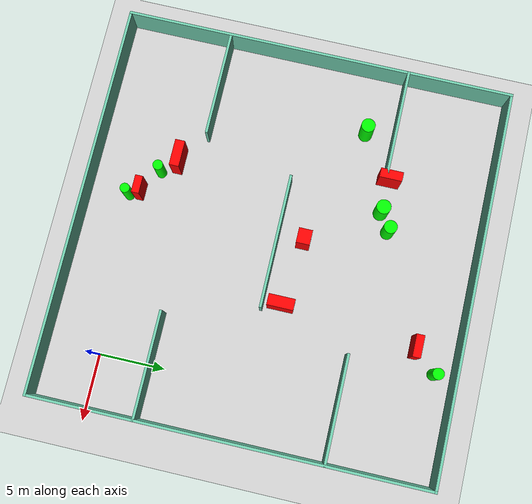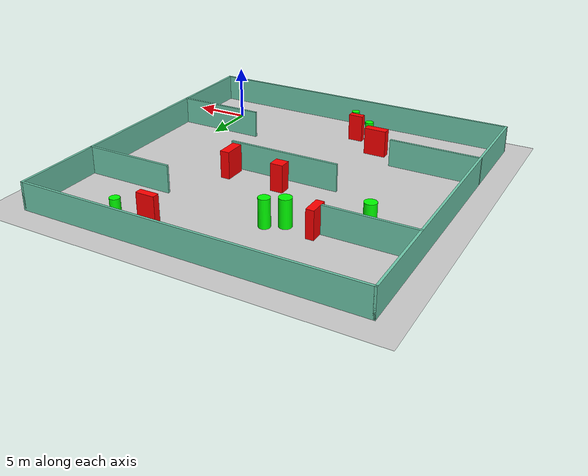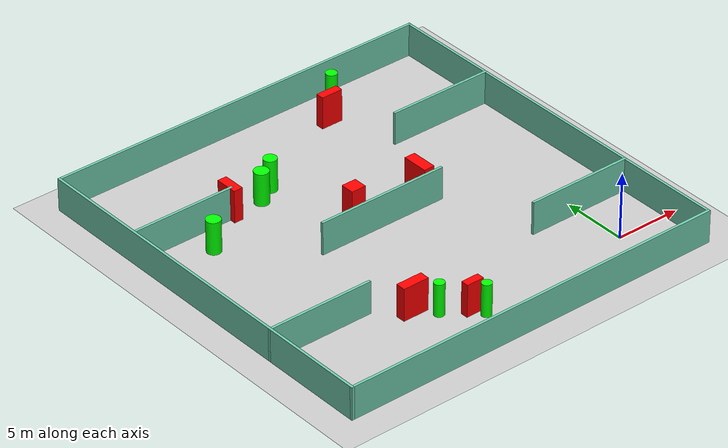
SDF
<sdf version="1.7">
 <world name="default">
  <light name="sun" type="directional">
   <pose>0 0 10 0 -0 0</pose>
   <diffuse>0.8 0.8 0.8 1</diffuse>
   <specular>0.2 0.2 0.2 1</specular>
   <attenuation>
    <range>1000</range>
    <constant>0.9</constant>
    <linear>0.01</linear>
    <quadratic>0.001</quadratic>
   </attenuation>
   <direction>-0.5 0.1 -0.9</direction>
   <spot><inner_angle>0</inner_angle><outer_angle>0</outer_angle><falloff>0</falloff></spot>
  </light>
  <model name="ground_plane">
   <static>1</static>
   <link name="link">
    <collision name="collision">
     <geometry><plane><normal>0 0 1</normal><size>100 100</size></plane></geometry>
     <surface>
      <contact><collide_bitmask>65535</collide_bitmask></contact>
      <friction><ode><mu>100</mu><mu2>50</mu2></ode></friction>
     </surface>
    </collision>
    <visual name="visual">
     <cast_shadows>0</cast_shadows>
     <geometry><plane><normal>0 0 1</normal><size>100 100</size></plane></geometry>
     <material>
      <script><uri>file://media/materials/scripts/gazebo.material</uri><name>Gazebo/Grey</name></script>
     </material>
    </visual>
   </link>
  </model>
  <gravity>0 0 -9.8</gravity>
  <magnetic_field>6e-06 2.3e-05 -4.2e-05</magnetic_field>
  <atmosphere type="adiabatic"/>
  <physics type="ode">
   <max_step_size>0.001</max_step_size>
   <real_time_factor>1</real_time_factor>
   <real_time_update_rate>1000</real_time_update_rate>
  </physics>
  <scene><ambient>0.4 0.4 0.4 1</ambient><background>0.7 0.7 0.7 1</background><shadows>1</shadows></scene>
  <spherical_coordinates>
   <surface_model>EARTH_WGS84</surface_model>
   <latitude_deg>0</latitude_deg>
   <longitude_deg>0</longitude_deg>
   <elevation>0</elevation>
   <heading_deg>0</heading_deg>
  </spherical_coordinates>
  <model name="my_base_walls">
   <link name="Wall_10">
    <collision name="Wall_10_Collision">
     <geometry><box><size>8.2 0.2 2.5</size></box></geometry>
     <pose>0 0 1.25 0 -0 0</pose>
    </collision>
    <visual name="Wall_10_Visual">
     <pose>0 0 1.25 0 -0 0</pose>
     <geometry><box><size>8.2 0.2 2.5</size></box></geometry>
     <material>
      <script><uri>file://media/materials/scripts/gazebo.material</uri><name>Gazebo/Grey</name></script>
      <ambient>0.435294 0.796078 0.67451 1</ambient>
     </material>
     <meta><layer>0</layer></meta>
    </visual>
    <pose>-11 -7 0 0 -0 0</pose>
   </link>
   <link name="Wall_12">
    <collision name="Wall_12_Collision">
     <geometry><box><size>8.2 0.2 2.5</size></box></geometry>
     <pose>0 0 1.25 0 -0 0</pose>
    </collision>
    <visual name="Wall_12_Visual">
     <pose>0 0 1.25 0 -0 0</pose>
     <geometry><box><size>8.2 0.2 2.5</size></box></geometry>
     <material>
      <script><uri>file://media/materials/scripts/gazebo.material</uri><name>Gazebo/Grey</name></script>
      <ambient>0.435294 0.796078 0.67451 1</ambient>
     </material>
     <meta><layer>0</layer></meta>
    </visual>
    <pose>-11 7 0 0 -0 0</pose>
   </link>
   <link name="Wall_14">
    <collision name="Wall_14_Collision">
     <geometry><box><size>8.2 0.2 2.5</size></box></geometry>
     <pose>0 0 1.25 0 -0 0</pose>
    </collision>
    <visual name="Wall_14_Visual">
     <pose>0 0 1.25 0 -0 0</pose>
     <geometry><box><size>8.2 0.2 2.5</size></box></geometry>
     <material>
      <script><uri>file://media/materials/scripts/gazebo.material</uri><name>Gazebo/Grey</name></script>
      <ambient>0.435294 0.796078 0.67451 1</ambient>
     </material>
     <meta><layer>0</layer></meta>
    </visual>
    <pose>11 7 0 0 -0 3.14159</pose>
   </link>
   <link name="Wall_16">
    <collision name="Wall_16_Collision">
     <geometry><box><size>10.2 0.2 2.5</size></box></geometry>
     <pose>0 0 1.25 0 -0 0</pose>
    </collision>
    <visual name="Wall_16_Visual">
     <pose>0 0 1.25 0 -0 0</pose>
     <geometry><box><size>10.2 0.2 2.5</size></box></geometry>
     <material>
      <script><uri>file://media/materials/scripts/gazebo.material</uri><name>Gazebo/Grey</name></script>
      <ambient>0.435294 0.796078 0.67451 1</ambient>
     </material>
     <meta><layer>0</layer></meta>
    </visual>
    <pose>0 0 0 0 -0 3.14159</pose>
   </link>
   <link name="Wall_2">
    <collision name="Wall_2_Collision">
     <geometry><box><size>30.2 0.2 2.5</size></box></geometry>
     <pose>0 0 1.25 0 -0 0</pose>
    </collision>
    <visual name="Wall_2_Visual">
     <pose>0 0 1.25 0 -0 0</pose>
     <geometry><box><size>30.2 0.2 2.5</size></box></geometry>
     <material>
      <script><uri>file://media/materials/scripts/gazebo.material</uri><name>Gazebo/Grey</name></script>
      <ambient>0.435294 0.796078 0.67451 1</ambient>
     </material>
     <meta><layer>0</layer></meta>
    </visual>
    <pose>0 -15 0 0 -0 3.14159</pose>
   </link>
   <link name="Wall_3">
    <collision name="Wall_3_Collision">
     <geometry><box><size>30.2 0.2 2.5</size></box></geometry>
     <pose>0 0 1.25 0 -0 0</pose>
    </collision>
    <visual name="Wall_3_Visual">
     <pose>0 0 1.25 0 -0 0</pose>
     <geometry><box><size>30.2 0.2 2.5</size></box></geometry>
     <material>
      <script><uri>file://media/materials/scripts/gazebo.material</uri><name>Gazebo/Grey</name></script>
      <ambient>0.435294 0.796078 0.67451 1</ambient>
     </material>
     <meta><layer>0</layer></meta>
    </visual>
    <pose>-15 0 0 0 -0 1.5708</pose>
   </link>
   <link name="Wall_4">
    <collision name="Wall_4_Collision">
     <geometry><box><size>30.2 0.2 2.5</size></box></geometry>
     <pose>0 0 1.25 0 -0 0</pose>
    </collision>
    <visual name="Wall_4_Visual">
     <pose>0 0 1.25 0 -0 0</pose>
     <geometry><box><size>30.2 0.2 2.5</size></box></geometry>
     <material>
      <script><uri>file://media/materials/scripts/gazebo.material</uri><name>Gazebo/Grey</name></script>
      <ambient>0.435294 0.796078 0.67451 1</ambient>
     </material>
     <meta><layer>0</layer></meta>
    </visual>
    <pose>0 15 0 0 -0 0</pose>
   </link>
   <link name="Wall_6">
    <collision name="Wall_6_Collision">
     <geometry><box><size>30.2 0.2 2.5</size></box></geometry>
     <pose>0 0 1.25 0 -0 0</pose>
    </collision>
    <visual name="Wall_6_Visual">
     <pose>0 0 1.25 0 -0 0</pose>
     <geometry><box><size>30.2 0.2 2.5</size></box></geometry>
     <material>
      <script><uri>file://media/materials/scripts/gazebo.material</uri><name>Gazebo/Grey</name></script>
      <ambient>0.435294 0.796078 0.67451 1</ambient>
     </material>
     <meta><layer>0</layer></meta>
    </visual>
    <pose>15 0 0 0 -0 1.5708</pose>
   </link>
   <link name="Wall_8">
    <collision name="Wall_8_Collision">
     <geometry><box><size>8.2 0.2 2.5</size></box></geometry>
     <pose>0 0 1.25 0 -0 0</pose>
    </collision>
    <visual name="Wall_8_Visual">
     <pose>0 0 1.25 0 -0 0</pose>
     <geometry><box><size>8.2 0.2 2.5</size></box></geometry>
     <material>
      <script><uri>file://media/materials/scripts/gazebo.material</uri><name>Gazebo/Grey</name></script>
      <ambient>0.435294 0.796078 0.67451 1</ambient>
     </material>
     <meta><layer>0</layer></meta>
    </visual>
    <pose>11 -7 0 0 -0 3.14159</pose>
   </link>
   <static>1</static>
   <pose>-11 11 0 0 -0 0</pose>
  </model>
  <model name="cylinder1">
   <static>1</static>
   <link name="link">
    <inertial>
     <mass>1</mass>
     <inertia><ixx>0.5</ixx><ixy>0</ixy><ixz>0</ixz><iyy>0.5</iyy><iyz>0</iyz><izz>1</izz></inertia>
    </inertial>
    <collision name="collision">
     <geometry><cylinder><radius>0.3710131290509626</radius><length>2.5</length></cylinder></geometry>
    </collision>
    <visual name="visual">
     <geometry><cylinder><radius>0.3710131290509626</radius><length>2.5</length></cylinder></geometry>
     <material>
      <ambient>0 1 0 1</ambient>
      <diffuse>0 1 0 1</diffuse>
      <specular>0.1 0.1 0.1 1</specular>
      <emissive>0 0 0 0</emissive>
     </material>
    </visual>
   </link>
   <pose>-12.344627751242058 -0.9038779293186048 1.25 0 0 0</pose>
  </model>
  <model name="cylinder2">
   <static>1</static>
   <link name="link">
    <inertial>
     <mass>1</mass>
     <inertia><ixx>0.5</ixx><ixy>0</ixy><ixz>0</ixz><iyy>0.5</iyy><iyz>0</iyz><izz>1</izz></inertia>
    </inertial>
    <collision name="collision">
     <geometry><cylinder><radius>0.38617363617183476</radius><length>2.5</length></cylinder></geometry>
    </collision>
    <visual name="visual">
     <geometry><cylinder><radius>0.38617363617183476</radius><length>2.5</length></cylinder></geometry>
     <material>
      <ambient>0 1 0 1</ambient>
      <diffuse>0 1 0 1</diffuse>
      <specular>0.1 0.1 0.1 1</specular>
      <emissive>0 0 0 0</emissive>
     </material>
    </visual>
   </link>
   <pose>-14.619897821576261 1.0640760651985328 1.25 0 0 0</pose>
  </model>
  <model name="cylinder3">
   <static>1</static>
   <link name="link">
    <inertial>
     <mass>1</mass>
     <inertia><ixx>0.5</ixx><ixy>0</ixy><ixz>0</ixz><iyy>0.5</iyy><iyz>0</iyz><izz>1</izz></inertia>
    </inertial>
    <collision name="collision">
     <geometry><cylinder><radius>0.5030788593833793</radius><length>2.5</length></cylinder></geometry>
    </collision>
    <visual name="visual">
     <geometry><cylinder><radius>0.5030788593833793</radius><length>2.5</length></cylinder></geometry>
     <material>
      <ambient>0 1 0 1</ambient>
      <diffuse>0 1 0 1</diffuse>
      <specular>0.1 0.1 0.1 1</specular>
      <emissive>0 0 0 0</emissive>
     </material>
    </visual>
   </link>
   <pose>-13.897040243123563 19.070936606895668 1.25 0 0 0</pose>
  </model>
  <model name="cylinder4">
   <static>1</static>
   <link name="link">
    <inertial>
     <mass>1</mass>
     <inertia><ixx>0.5</ixx><ixy>0</ixy><ixz>0</ixz><iyy>0.5</iyy><iyz>0</iyz><izz>1</izz></inertia>
    </inertial>
    <collision name="collision">
     <geometry><cylinder><radius>0.5549169056714268</radius><length>2.5</length></cylinder></geometry>
    </collision>
    <visual name="visual">
     <geometry><cylinder><radius>0.5549169056714268</radius><length>2.5</length></cylinder></geometry>
     <material>
      <ambient>0 1 0 1</ambient>
      <diffuse>0 1 0 1</diffuse>
      <specular>0.1 0.1 0.1 1</specular>
      <emissive>0 0 0 0</emissive>
     </material>
    </visual>
   </link>
   <pose>-15.280388467273475 18.265259614129643 1.25 0 0 0</pose>
  </model>
  <model name="cylinder5">
   <static>1</static>
   <link name="link">
    <inertial>
     <mass>1</mass>
     <inertia><ixx>0.5</ixx><ixy>0</ixy><ixz>0</ixz><iyy>0.5</iyy><iyz>0</iyz><izz>1</izz></inertia>
    </inertial>
    <collision name="collision">
     <geometry><cylinder><radius>0.5328954656535454</radius><length>2.5</length></cylinder></geometry>
    </collision>
    <visual name="visual">
     <geometry><cylinder><radius>0.5328954656535454</radius><length>2.5</length></cylinder></geometry>
     <material>
      <ambient>0 1 0 1</ambient>
      <diffuse>0 1 0 1</diffuse>
      <specular>0.1 0.1 0.1 1</specular>
      <emissive>0 0 0 0</emissive>
     </material>
    </visual>
   </link>
   <pose>-21.19803389652374 15.843409552933949 1.25 0 0 0</pose>
  </model>
  <model name="cylinder6">
   <static>1</static>
   <link name="link">
    <inertial>
     <mass>1</mass>
     <inertia><ixx>0.5</ixx><ixy>0</ixy><ixz>0</ixz><iyy>0.5</iyy><iyz>0</iyz><izz>1</izz></inertia>
    </inertial>
    <collision name="collision">
     <geometry><cylinder><radius>0.4313111135277888</radius><length>2.5</length></cylinder></geometry>
    </collision>
    <visual name="visual">
     <geometry><cylinder><radius>0.4313111135277888</radius><length>2.5</length></cylinder></geometry>
     <material>
      <ambient>0 1 0 1</ambient>
      <diffuse>0 1 0 1</diffuse>
      <specular>0.1 0.1 0.1 1</specular>
      <emissive>0 0 0 0</emissive>
     </material>
    </visual>
   </link>
   <pose>-4.113097312413654 24.58710829149669 1.25 0 0 0</pose>
  </model>
  <model name="box1">
   <static>1</static>
   <link name="link">
    <inertial>
     <mass>1</mass>
     <inertia><ixx>0.083</ixx><ixy>0</ixy><ixz>0</ixz><iyy>0.083</iyy><iyz>0</iyz><izz>0.083</izz></inertia>
    </inertial>
    <collision name="collision">
     <geometry><box><size>2.019971691068606 0.7483017941143905 2.5</size></box></geometry>
    </collision>
    <visual name="visual">
     <geometry><box><size>2.019971691068606 0.7483017941143905 2.5</size></box></geometry>
     <material>
      <ambient>1 0 0 1</ambient>
      <diffuse>1 0 0 1</diffuse>
      <specular>0.1 0.1 0.1 1</specular>
      <emissive>0 0 0 0</emissive>
     </material>
    </visual>
    <sensor name="my_contact" type="contact">
     <contact><collision>box_collision</collision><topic>__default_topic__</topic></contact>
    </sensor>
   </link>
   <pose>-15.853669297266428 2.236746590790391 1.25 0 0 0</pose>
  </model>
  <model name="box2">
   <static>1</static>
   <link name="link">
    <inertial>
     <mass>1</mass>
     <inertia><ixx>0.083</ixx><ixy>0</ixy><ixz>0</ixz><iyy>0.083</iyy><iyz>0</iyz><izz>0.083</izz></inertia>
    </inertial>
    <collision name="collision">
     <geometry><box><size>1.1371383788703633 1.0450636743561574 2.5</size></box></geometry>
    </collision>
    <visual name="visual">
     <geometry><box><size>1.1371383788703633 1.0450636743561574 2.5</size></box></geometry>
     <material>
      <ambient>1 0 0 1</ambient>
      <diffuse>1 0 0 1</diffuse>
      <specular>0.1 0.1 0.1 1</specular>
      <emissive>0 0 0 0</emissive>
     </material>
    </visual>
    <sensor name="my_contact" type="contact">
     <contact><collision>box_collision</collision><topic>__default_topic__</topic></contact>
    </sensor>
   </link>
   <pose>-11.767803218281482 12.99236280773639 1.25 0 0 0</pose>
  </model>
  <model name="box3">
   <static>1</static>
   <link name="link">
    <inertial>
     <mass>1</mass>
     <inertia><ixx>0.083</ixx><ixy>0</ixy><ixz>0</ixz><iyy>0.083</iyy><iyz>0</iyz><izz>0.083</izz></inertia>
    </inertial>
    <collision name="collision">
     <geometry><box><size>0.84707884198458 2.0069215904811912 2.5</size></box></geometry>
    </collision>
    <visual name="visual">
     <geometry><box><size>0.84707884198458 2.0069215904811912 2.5</size></box></geometry>
     <material>
      <ambient>1 0 0 1</ambient>
      <diffuse>1 0 0 1</diffuse>
      <specular>0.1 0.1 0.1 1</specular>
      <emissive>0 0 0 0</emissive>
     </material>
    </visual>
    <sensor name="my_contact" type="contact">
     <contact><collision>box_collision</collision><topic>__default_topic__</topic></contact>
    </sensor>
   </link>
   <pose>-6.6342583180523995 12.39608107790413 1.25 0 0 0</pose>
  </model>
  <model name="box4">
   <static>1</static>
   <link name="link">
    <inertial>
     <mass>1</mass>
     <inertia><ixx>0.083</ixx><ixy>0</ixy><ixz>0</ixz><iyy>0.083</iyy><iyz>0</iyz><izz>0.083</izz></inertia>
    </inertial>
    <collision name="collision">
     <geometry><box><size>1.6949087832247829 0.6202202363205124 2.5</size></box></geometry>
    </collision>
    <visual name="visual">
     <geometry><box><size>1.6949087832247829 0.6202202363205124 2.5</size></box></geometry>
     <material>
      <ambient>1 0 0 1</ambient>
      <diffuse>1 0 0 1</diffuse>
      <specular>0.1 0.1 0.1 1</specular>
      <emissive>0 0 0 0</emissive>
     </material>
    </visual>
    <sensor name="my_contact" type="contact">
     <contact><collision>box_collision</collision><topic>__default_topic__</topic></contact>
    </sensor>
   </link>
   <pose>-5.759057085084898 22.813954248865308 1.25 0 0 0</pose>
  </model>
  <model name="box5">
   <static>1</static>
   <link name="link">
    <inertial>
     <mass>1</mass>
     <inertia><ixx>0.083</ixx><ixy>0</ixy><ixz>0</ixz><iyy>0.083</iyy><iyz>0</iyz><izz>0.083</izz></inertia>
    </inertial>
    <collision name="collision">
     <geometry><box><size>1.344813920870687 0.5848164481884617 2.5</size></box></geometry>
    </collision>
    <visual name="visual">
     <geometry><box><size>1.344813920870687 0.5848164481884617 2.5</size></box></geometry>
     <material>
      <ambient>1 0 0 1</ambient>
      <diffuse>1 0 0 1</diffuse>
      <specular>0.1 0.1 0.1 1</specular>
      <emissive>0 0 0 0</emissive>
     </material>
    </visual>
    <sensor name="my_contact" type="contact">
     <contact><collision>box_collision</collision><topic>__default_topic__</topic></contact>
    </sensor>
   </link>
   <pose>-12.837173146257497 -0.08656121997614452 1.25 0 0 0</pose>
  </model>
  <model name="box6">
   <static>1</static>
   <link name="link">
    <inertial>
     <mass>1</mass>
     <inertia><ixx>0.083</ixx><ixy>0</ixy><ixz>0</ixz><iyy>0.083</iyy><iyz>0</iyz><izz>0.083</izz></inertia>
    </inertial>
    <collision name="collision">
     <geometry><box><size>0.7061258021453136 1.7216967498483113 2.5</size></box></geometry>
    </collision>
    <visual name="visual">
     <geometry><box><size>0.7061258021453136 1.7216967498483113 2.5</size></box></geometry>
     <material>
      <ambient>1 0 0 1</ambient>
      <diffuse>1 0 0 1</diffuse>
      <specular>0.1 0.1 0.1 1</specular>
      <emissive>0 0 0 0</emissive>
     </material>
    </visual>
    <sensor name="my_contact" type="contact">
     <contact><collision>box_collision</collision><topic>__default_topic__</topic></contact>
    </sensor>
   </link>
   <pose>-17.83153528769568 18.336380025137377 1.25 0 0 0</pose>
  </model>
 </world>
</sdf>
